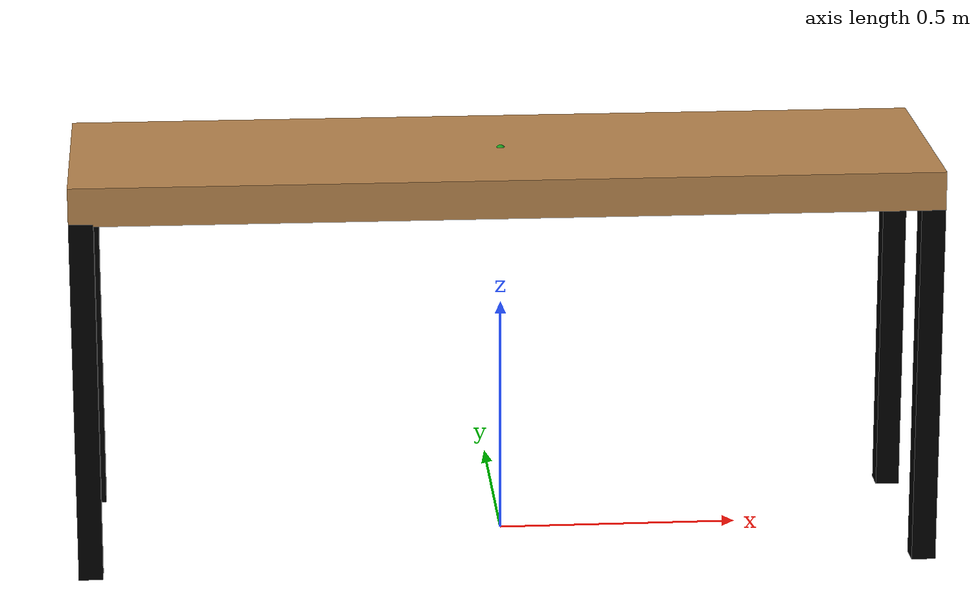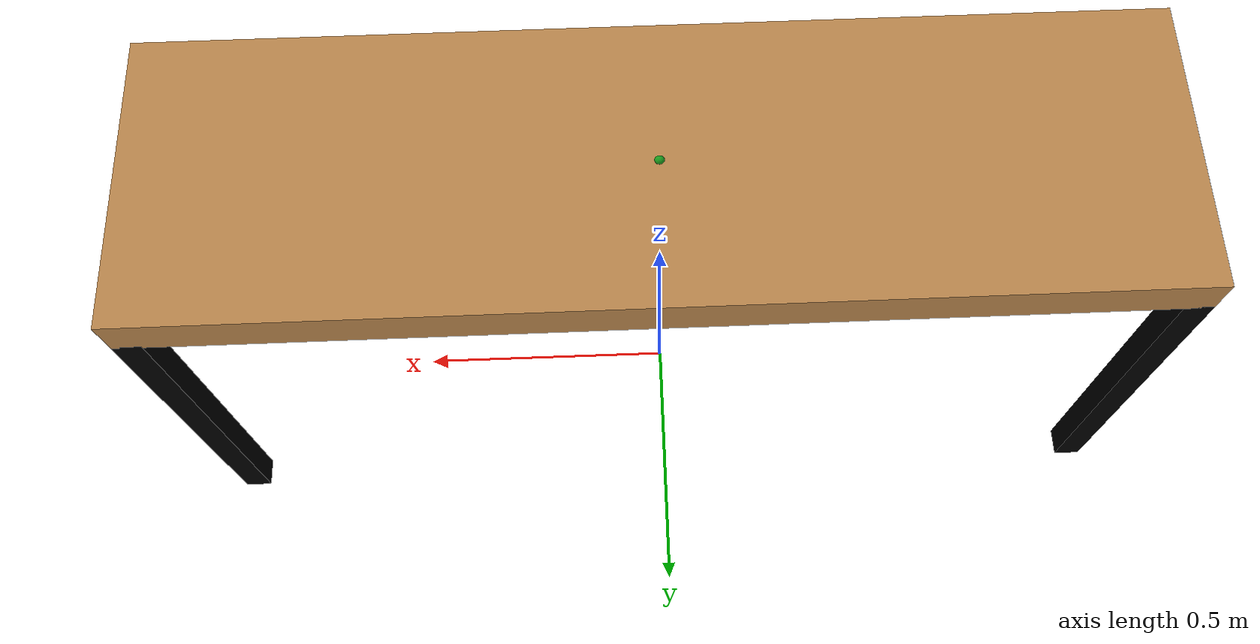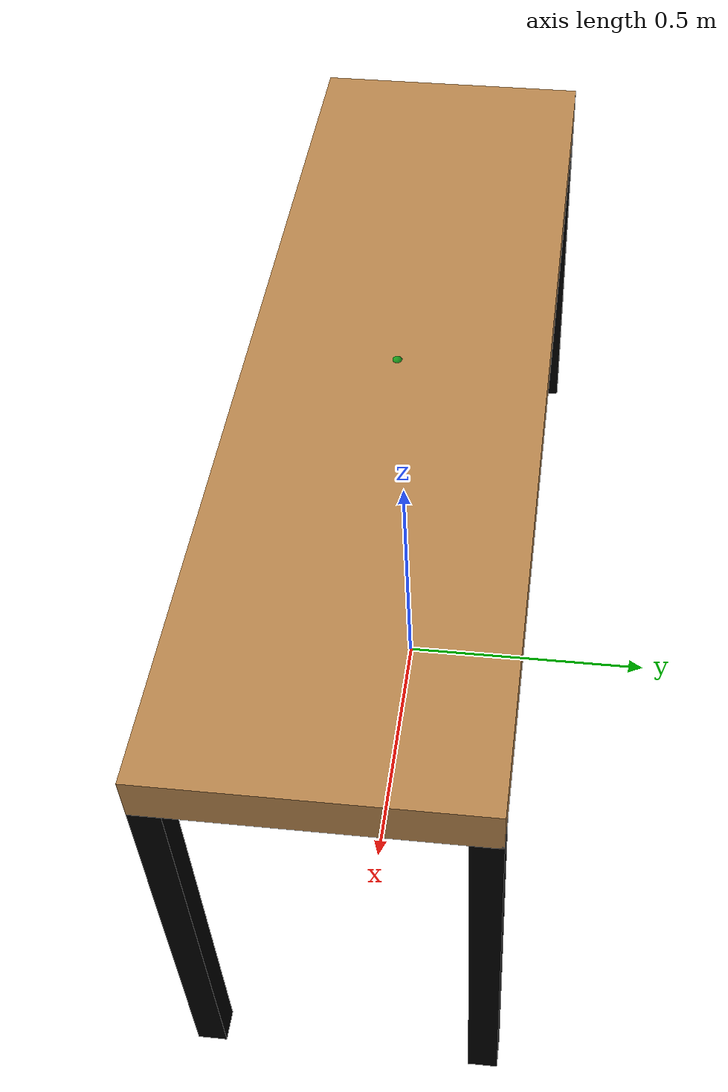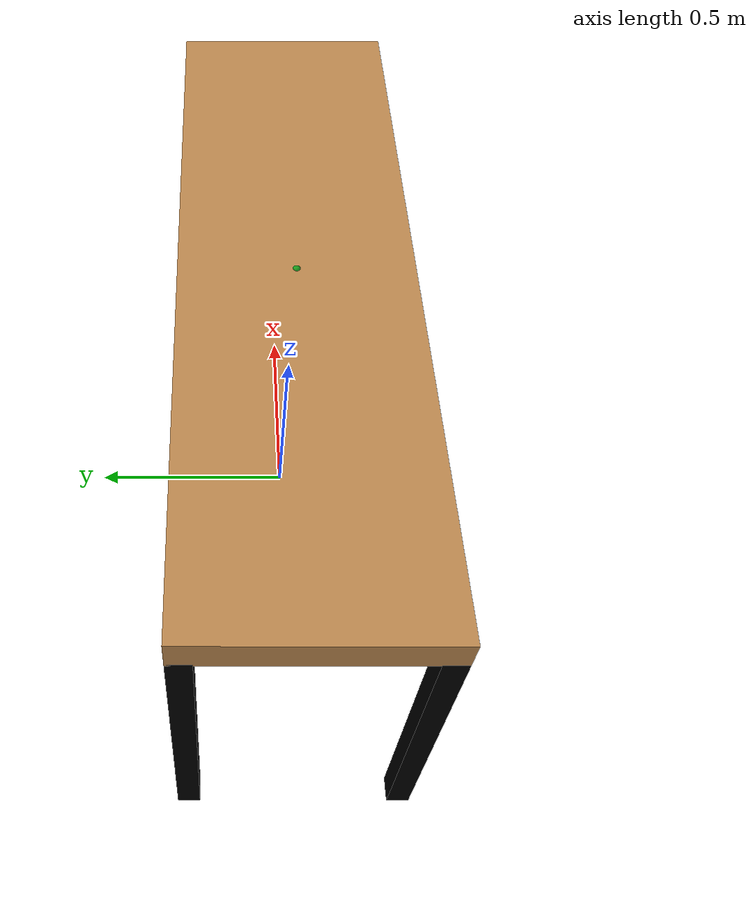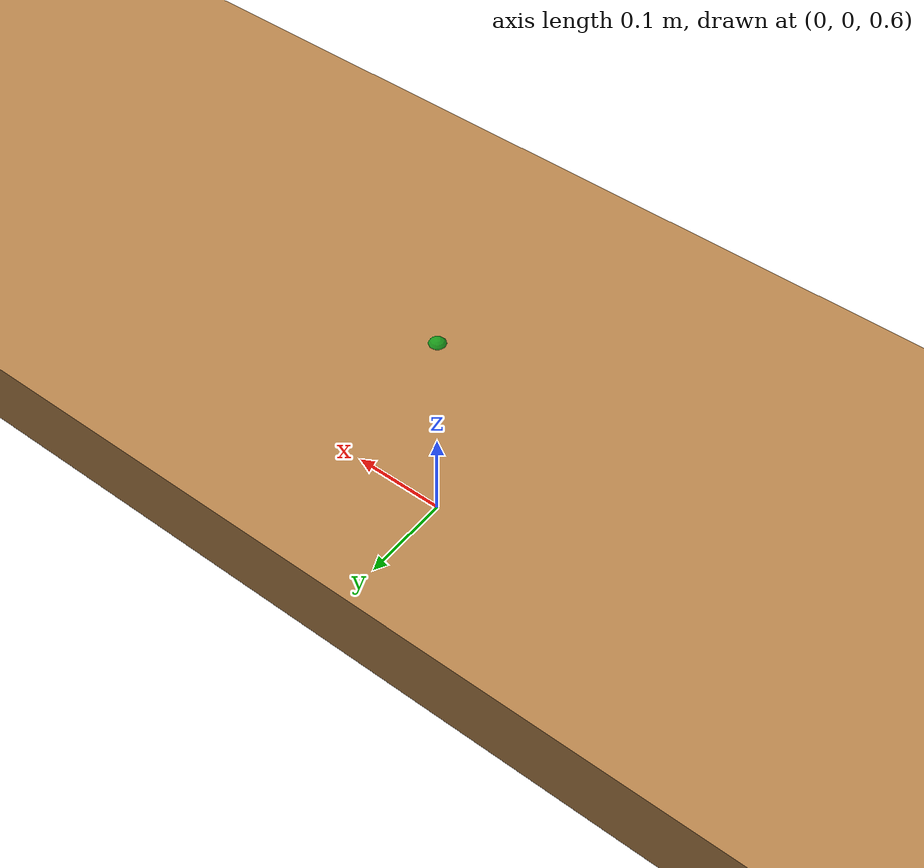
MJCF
<mujoco model="table_178x53x7cm_legs76cm">

  <option timestep="0.002" gravity="0 0 -9.81"/>
  <compiler angle="degree" coordinate="local"/>

  <default>
    <geom friction="0.8 0.1 0.01" rgba="0.72 0.52 0.30 1" density="700"/>
  </default>

  <worldbody>

    <!-- Table assembly -->
    <body name="table" pos="0 0 0.795">
      <!-- Tabletop -->
      <geom name="tabletop" type="box" size="0.89 0.265 0.04" />

      <!-- Useful site at tabletop center (top surface) -->
      <site name="tabletop_top_center" pos="0 0 0.035" size="0.01" type="sphere" rgba="0.1 0.6 0.1 1"/>

      <!-- Legs (LEG_W = 0.05 m -> half = 0.025) -->
      <!-- Front-right leg (+x, +y) -->
  <geom name="leg_fr" type="box" size="0.025 0.025 0.38" pos="0.865 0.24 -0.415" rgba="0 0 0 1" />
      <!-- Front-left leg (-x, +y) -->
  <geom name="leg_fl" type="box" size="0.025 0.025 0.38" pos="-0.865 0.24 -0.415" rgba="0 0 0 1" />
      <!-- Back-right leg (+x, -y) -->
  <geom name="leg_br" type="box" size="0.025 0.025 0.38" pos="0.865 -0.24 -0.415" rgba="0 0 0 1" />
      <!-- Back-left leg (-x, -y) -->
  <geom name="leg_bl" type="box" size="0.025 0.025 0.38" pos="-0.865 -0.24 -0.415" rgba="0 0 0 1" />
    </body>
  </worldbody>

  <actuator/>
</mujoco>
